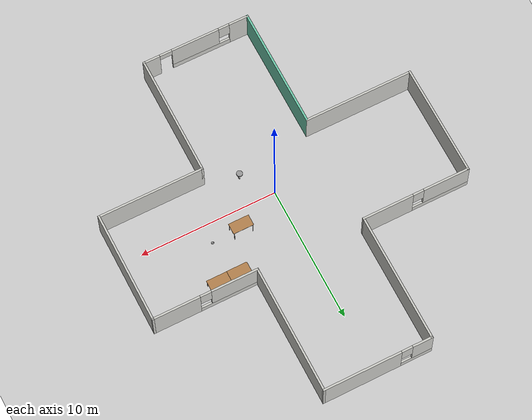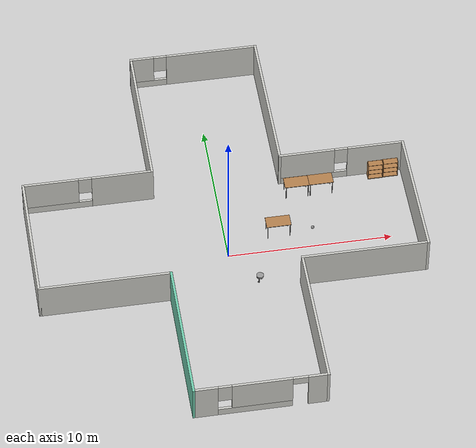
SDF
<sdf version="1.6">
 <world name="default">
  <model name="ground_plane">
   <static>1</static>
   <link name="link">
    <collision name="collision">
     <geometry><plane><normal>0 0 1</normal><size>100 100</size></plane></geometry>
     <surface>
      <contact><collide_bitmask>65535</collide_bitmask></contact>
      <friction><ode><mu>100</mu><mu2>50</mu2></ode></friction>
     </surface>
    </collision>
    <visual name="visual">
     <cast_shadows>0</cast_shadows>
     <geometry><plane><normal>0 0 1</normal><size>100 100</size></plane></geometry>
     <material>
      <script><uri>file://media/materials/scripts/gazebo.material</uri><name>Gazebo/Grey</name></script>
     </material>
    </visual>
   </link>
  </model>
  <model name="model">
   <pose>-0.05674 1.50944 0 0 -0 0</pose>
   <link name="Wall_34">
    <collision name="Wall_34_Collision">
     <geometry><box><size>9.5 0.15 2.5</size></box></geometry>
     <pose>0 0 1.25 0 -0 0</pose>
    </collision>
    <visual name="Wall_34_Visual">
     <pose>0 0 1.25 0 -0 0</pose>
     <geometry><box><size>9.5 0.15 2.5</size></box></geometry>
     <material>
      <script><uri>file://media/materials/scripts/gazebo.material</uri><name>Gazebo/CeilingTiled</name></script>
      <ambient>0.435294 0.796078 0.67451 1</ambient>
     </material>
     <meta><layer>0</layer></meta>
    </visual>
    <pose>-3.8 8.475 0 0 0 -1.5708</pose>
   </link>
   <link name="Wall_35">
    <pose>-7.725 3.8 0 0 -0 3.14159</pose>
    <visual name="Wall_35_Visual_0">
     <pose>-2.11265 0 1.25 0 -0 0</pose>
     <geometry><box><size>3.77469 0.15 2.5</size></box></geometry>
     <material>
      <script><uri>file://media/materials/scripts/gazebo.material</uri><name>Gazebo/CeilingTiled</name></script>
      <ambient>0.435294 0.796078 0.67451 1</ambient>
     </material>
     <meta><layer>0</layer></meta>
    </visual>
    <collision name="Wall_35_Collision_0">
     <geometry><box><size>3.77469 0.15 2.5</size></box></geometry>
     <pose>-2.11265 0 1.25 0 -0 0</pose>
    </collision>
    <visual name="Wall_35_Visual_1">
     <pose>1.88735 0 0.25 0 -0 0</pose>
     <geometry><box><size>4.22531 0.15 0.5</size></box></geometry>
     <material>
      <script><uri>file://media/materials/scripts/gazebo.material</uri><name>Gazebo/CeilingTiled</name></script>
      <ambient>0.435294 0.796078 0.67451 1</ambient>
     </material>
     <meta><layer>0</layer></meta>
    </visual>
    <collision name="Wall_35_Collision_1">
     <geometry><box><size>4.22531 0.15 0.5</size></box></geometry>
     <pose>1.88735 0 0.25 0 -0 0</pose>
    </collision>
    <visual name="Wall_35_Visual_2">
     <pose>2.28735 0 1.5 0 -0 0</pose>
     <geometry><box><size>3.42531 0.15 2</size></box></geometry>
     <material>
      <script><uri>file://media/materials/scripts/gazebo.material</uri><name>Gazebo/CeilingTiled</name></script>
      <ambient>0.435294 0.796078 0.67451 1</ambient>
     </material>
     <meta><layer>0</layer></meta>
    </visual>
    <collision name="Wall_35_Collision_2">
     <geometry><box><size>3.42531 0.15 2</size></box></geometry>
     <pose>2.28735 0 1.5 0 -0 0</pose>
    </collision>
    <visual name="Wall_35_Visual_3">
     <pose>0.174692 0 1.9 0 -0 0</pose>
     <geometry><box><size>0.8 0.15 1.2</size></box></geometry>
     <material>
      <script><uri>file://media/materials/scripts/gazebo.material</uri><name>Gazebo/CeilingTiled</name></script>
      <ambient>0.435294 0.796078 0.67451 1</ambient>
     </material>
     <meta><layer>0</layer></meta>
    </visual>
    <collision name="Wall_35_Collision_3">
     <geometry><box><size>0.8 0.15 1.2</size></box></geometry>
     <pose>0.174692 0 1.9 0 -0 0</pose>
    </collision>
   </link>
   <link name="Wall_36">
    <collision name="Wall_36_Collision">
     <geometry><box><size>8.25 0.15 2.5</size></box></geometry>
     <pose>0 0 1.25 0 -0 0</pose>
    </collision>
    <visual name="Wall_36_Visual">
     <pose>0 0 1.25 0 -0 0</pose>
     <geometry><box><size>8.25 0.15 2.5</size></box></geometry>
     <material>
      <script><uri>file://media/materials/scripts/gazebo.material</uri><name>Gazebo/CeilingTiled</name></script>
      <ambient>0.435294 0.796078 0.67451 1</ambient>
     </material>
     <meta><layer>0</layer></meta>
    </visual>
    <pose>-11.65 -0.25 0 0 0 -1.5708</pose>
   </link>
   <link name="Wall_37">
    <collision name="Wall_37_Collision">
     <geometry><box><size>8 0.15 2.5</size></box></geometry>
     <pose>0 0 1.25 0 -0 0</pose>
    </collision>
    <visual name="Wall_37_Visual">
     <pose>0 0 1.25 0 -0 0</pose>
     <geometry><box><size>8 0.15 2.5</size></box></geometry>
     <material>
      <script><uri>file://media/materials/scripts/gazebo.material</uri><name>Gazebo/CeilingTiled</name></script>
      <ambient>0.435294 0.796078 0.67451 1</ambient>
     </material>
     <meta><layer>0</layer></meta>
    </visual>
    <pose>-7.725 -4.3 0 0 -0 0</pose>
   </link>
   <link name="Wall_38">
    <collision name="Wall_38_Collision">
     <geometry><box><size>9 0.15 2.5</size></box></geometry>
     <pose>0 0 1.25 0 -0 0</pose>
    </collision>
    <visual name="Wall_38_Visual">
     <pose>0 0 1.25 0 -0 0</pose>
     <geometry><box><size>9 0.15 2.5</size></box></geometry>
     <material>
      <script><uri>file://media/materials/scripts/gazebo.material</uri><name>Gazebo/Grey</name></script>
      <ambient>0.435294 0.796078 0.67451 1</ambient>
     </material>
     <meta><layer>0</layer></meta>
    </visual>
    <pose>-3.8 -8.725 0 0 0 -1.5708</pose>
   </link>
   <link name="Wall_39">
    <pose>0.125 -13.15 0 0 -0 0</pose>
    <visual name="Wall_39_Visual_0">
     <pose>-3.25429 0 1.25 0 -0 0</pose>
     <geometry><box><size>1.49142 0.15 2.5</size></box></geometry>
     <material>
      <script><uri>file://media/materials/scripts/gazebo.material</uri><name>Gazebo/CeilingTiled</name></script>
      <ambient>0.435294 0.796078 0.67451 1</ambient>
     </material>
     <meta><layer>0</layer></meta>
    </visual>
    <collision name="Wall_39_Collision_0">
     <geometry><box><size>1.49142 0.15 2.5</size></box></geometry>
     <pose>-3.25429 0 1.25 0 -0 0</pose>
    </collision>
    <visual name="Wall_39_Visual_1">
     <pose>3.3734 0 1.25 0 -0 0</pose>
     <geometry><box><size>1.25321 0.15 2.5</size></box></geometry>
     <material>
      <script><uri>file://media/materials/scripts/gazebo.material</uri><name>Gazebo/CeilingTiled</name></script>
      <ambient>0.435294 0.796078 0.67451 1</ambient>
     </material>
     <meta><layer>0</layer></meta>
    </visual>
    <collision name="Wall_39_Collision_1">
     <geometry><box><size>1.25321 0.15 2.5</size></box></geometry>
     <pose>3.3734 0 1.25 0 -0 0</pose>
    </collision>
    <visual name="Wall_39_Visual_2">
     <pose>-0.330892 0 0.25 0 -0 0</pose>
     <geometry><box><size>4.35537 0.15 0.5</size></box></geometry>
     <material>
      <script><uri>file://media/materials/scripts/gazebo.material</uri><name>Gazebo/CeilingTiled</name></script>
      <ambient>0.435294 0.796078 0.67451 1</ambient>
     </material>
     <meta><layer>0</layer></meta>
    </visual>
    <collision name="Wall_39_Collision_2">
     <geometry><box><size>4.35537 0.15 0.5</size></box></geometry>
     <pose>-0.330892 0 0.25 0 -0 0</pose>
    </collision>
    <visual name="Wall_39_Visual_3">
     <pose>0.069108 0 1.5 0 -0 0</pose>
     <geometry><box><size>3.55537 0.15 2</size></box></geometry>
     <material>
      <script><uri>file://media/materials/scripts/gazebo.material</uri><name>Gazebo/CeilingTiled</name></script>
      <ambient>0.435294 0.796078 0.67451 1</ambient>
     </material>
     <meta><layer>0</layer></meta>
    </visual>
    <collision name="Wall_39_Collision_3">
     <geometry><box><size>3.55537 0.15 2</size></box></geometry>
     <pose>0.069108 0 1.5 0 -0 0</pose>
    </collision>
    <visual name="Wall_39_Visual_4">
     <pose>-2.10858 0 1.9 0 -0 0</pose>
     <geometry><box><size>0.8 0.15 1.2</size></box></geometry>
     <material>
      <script><uri>file://media/materials/scripts/gazebo.material</uri><name>Gazebo/CeilingTiled</name></script>
      <ambient>0.435294 0.796078 0.67451 1</ambient>
     </material>
     <meta><layer>0</layer></meta>
    </visual>
    <collision name="Wall_39_Collision_4">
     <geometry><box><size>0.8 0.15 1.2</size></box></geometry>
     <pose>-2.10858 0 1.9 0 -0 0</pose>
    </collision>
    <visual name="Wall_39_Visual_5">
     <pose>2.29679 0 2.25 0 -0 0</pose>
     <geometry><box><size>0.9 0.15 0.5</size></box></geometry>
     <material>
      <script><uri>file://media/materials/scripts/gazebo.material</uri><name>Gazebo/CeilingTiled</name></script>
      <ambient>0.435294 0.796078 0.67451 1</ambient>
     </material>
     <meta><layer>0</layer></meta>
    </visual>
    <collision name="Wall_39_Collision_5">
     <geometry><box><size>0.9 0.15 0.5</size></box></geometry>
     <pose>2.29679 0 2.25 0 -0 0</pose>
    </collision>
   </link>
   <link name="Wall_40">
    <collision name="Wall_40_Collision">
     <geometry><box><size>9 0.15 2.5</size></box></geometry>
     <pose>0 0 1.25 0 -0 0</pose>
    </collision>
    <visual name="Wall_40_Visual">
     <pose>0 0 1.25 0 -0 0</pose>
     <geometry><box><size>9 0.15 2.5</size></box></geometry>
     <material>
      <script><uri>file://media/materials/scripts/gazebo.material</uri><name>Gazebo/CeilingTiled</name></script>
      <ambient>0.435294 0.796078 0.67451 1</ambient>
     </material>
     <meta><layer>0</layer></meta>
    </visual>
    <pose>4.05 -8.725 0 0 -0 1.5708</pose>
   </link>
   <link name="Wall_41">
    <collision name="Wall_41_Collision">
     <geometry><box><size>7.75 0.15 2.5</size></box></geometry>
     <pose>0 0 1.25 0 -0 0</pose>
    </collision>
    <visual name="Wall_41_Visual">
     <pose>0 0 1.25 0 -0 0</pose>
     <geometry><box><size>7.75 0.15 2.5</size></box></geometry>
     <material>
      <script><uri>file://media/materials/scripts/gazebo.material</uri><name>Gazebo/CeilingTiled</name></script>
      <ambient>0.435294 0.796078 0.67451 1</ambient>
     </material>
     <meta><layer>0</layer></meta>
    </visual>
    <pose>7.85 -4.3 0 0 -0 0</pose>
   </link>
   <link name="Wall_42">
    <collision name="Wall_42_Collision">
     <geometry><box><size>8.25 0.15 2.5</size></box></geometry>
     <pose>0 0 1.25 0 -0 0</pose>
    </collision>
    <visual name="Wall_42_Visual">
     <pose>0 0 1.25 0 -0 0</pose>
     <geometry><box><size>8.25 0.15 2.5</size></box></geometry>
     <material>
      <script><uri>file://media/materials/scripts/gazebo.material</uri><name>Gazebo/CeilingTiled</name></script>
      <ambient>0.435294 0.796078 0.67451 1</ambient>
     </material>
     <meta><layer>0</layer></meta>
    </visual>
    <pose>11.65 -0.25 0 0 -0 1.5708</pose>
   </link>
   <link name="Wall_43">
    <pose>7.85 3.8 0 0 -0 3.14159</pose>
    <visual name="Wall_43_Visual_0">
     <pose>-2.12983 0 1.25 0 -0 0</pose>
     <geometry><box><size>3.49035 0.15 2.5</size></box></geometry>
     <material>
      <script><uri>file://media/materials/scripts/gazebo.material</uri><name>Gazebo/CeilingTiled</name></script>
      <ambient>0.435294 0.796078 0.67451 1</ambient>
     </material>
     <meta><layer>0</layer></meta>
    </visual>
    <collision name="Wall_43_Collision_0">
     <geometry><box><size>3.49035 0.15 2.5</size></box></geometry>
     <pose>-2.12983 0 1.25 0 -0 0</pose>
    </collision>
    <visual name="Wall_43_Visual_1">
     <pose>1.74517 0 0.25 0 -0 0</pose>
     <geometry><box><size>4.25966 0.15 0.5</size></box></geometry>
     <material>
      <script><uri>file://media/materials/scripts/gazebo.material</uri><name>Gazebo/CeilingTiled</name></script>
      <ambient>0.435294 0.796078 0.67451 1</ambient>
     </material>
     <meta><layer>0</layer></meta>
    </visual>
    <collision name="Wall_43_Collision_1">
     <geometry><box><size>4.25966 0.15 0.5</size></box></geometry>
     <pose>1.74517 0 0.25 0 -0 0</pose>
    </collision>
    <visual name="Wall_43_Visual_2">
     <pose>2.14517 0 1.5 0 -0 0</pose>
     <geometry><box><size>3.45966 0.15 2</size></box></geometry>
     <material>
      <script><uri>file://media/materials/scripts/gazebo.material</uri><name>Gazebo/CeilingTiled</name></script>
      <ambient>0.435294 0.796078 0.67451 1</ambient>
     </material>
     <meta><layer>0</layer></meta>
    </visual>
    <collision name="Wall_43_Collision_2">
     <geometry><box><size>3.45966 0.15 2</size></box></geometry>
     <pose>2.14517 0 1.5 0 -0 0</pose>
    </collision>
    <visual name="Wall_43_Visual_3">
     <pose>0.015345 0 1.9 0 -0 0</pose>
     <geometry><box><size>0.8 0.15 1.2</size></box></geometry>
     <material>
      <script><uri>file://media/materials/scripts/gazebo.material</uri><name>Gazebo/CeilingTiled</name></script>
      <ambient>0.435294 0.796078 0.67451 1</ambient>
     </material>
     <meta><layer>0</layer></meta>
    </visual>
    <collision name="Wall_43_Collision_3">
     <geometry><box><size>0.8 0.15 1.2</size></box></geometry>
     <pose>0.015345 0 1.9 0 -0 0</pose>
    </collision>
   </link>
   <link name="Wall_44">
    <collision name="Wall_44_Collision">
     <geometry><box><size>9.5 0.15 2.5</size></box></geometry>
     <pose>0 0 1.25 0 -0 0</pose>
    </collision>
    <visual name="Wall_44_Visual">
     <pose>0 0 1.25 0 -0 0</pose>
     <geometry><box><size>9.5 0.15 2.5</size></box></geometry>
     <material>
      <script><uri>file://media/materials/scripts/gazebo.material</uri><name>Gazebo/CeilingTiled</name></script>
      <ambient>0.435294 0.796078 0.67451 1</ambient>
     </material>
     <meta><layer>0</layer></meta>
    </visual>
    <pose>4.05 8.475 0 0 -0 1.5708</pose>
   </link>
   <link name="Wall_45">
    <pose>0.125 13.15 0 0 -0 3.14159</pose>
    <visual name="Wall_45_Visual_0">
     <pose>-1.14571 0 1.25 0 -0 0</pose>
     <geometry><box><size>5.70858 0.15 2.5</size></box></geometry>
     <material>
      <script><uri>file://media/materials/scripts/gazebo.material</uri><name>Gazebo/CeilingTiled</name></script>
      <ambient>0.435294 0.796078 0.67451 1</ambient>
     </material>
     <meta><layer>0</layer></meta>
    </visual>
    <collision name="Wall_45_Collision_0">
     <geometry><box><size>5.70858 0.15 2.5</size></box></geometry>
     <pose>-1.14571 0 1.25 0 -0 0</pose>
    </collision>
    <visual name="Wall_45_Visual_1">
     <pose>2.85429 0 0.25 0 -0 0</pose>
     <geometry><box><size>2.29142 0.15 0.5</size></box></geometry>
     <material>
      <script><uri>file://media/materials/scripts/gazebo.material</uri><name>Gazebo/CeilingTiled</name></script>
      <ambient>0.435294 0.796078 0.67451 1</ambient>
     </material>
     <meta><layer>0</layer></meta>
    </visual>
    <collision name="Wall_45_Collision_1">
     <geometry><box><size>2.29142 0.15 0.5</size></box></geometry>
     <pose>2.85429 0 0.25 0 -0 0</pose>
    </collision>
    <visual name="Wall_45_Visual_2">
     <pose>3.25429 0 1.5 0 -0 0</pose>
     <geometry><box><size>1.49142 0.15 2</size></box></geometry>
     <material>
      <script><uri>file://media/materials/scripts/gazebo.material</uri><name>Gazebo/CeilingTiled</name></script>
      <ambient>0.435294 0.796078 0.67451 1</ambient>
     </material>
     <meta><layer>0</layer></meta>
    </visual>
    <collision name="Wall_45_Collision_2">
     <geometry><box><size>1.49142 0.15 2</size></box></geometry>
     <pose>3.25429 0 1.5 0 -0 0</pose>
    </collision>
    <visual name="Wall_45_Visual_3">
     <pose>2.10858 0 1.9 0 -0 0</pose>
     <geometry><box><size>0.8 0.15 1.2</size></box></geometry>
     <material>
      <script><uri>file://media/materials/scripts/gazebo.material</uri><name>Gazebo/CeilingTiled</name></script>
      <ambient>0.435294 0.796078 0.67451 1</ambient>
     </material>
     <meta><layer>0</layer></meta>
    </visual>
    <collision name="Wall_45_Collision_3">
     <geometry><box><size>0.8 0.15 1.2</size></box></geometry>
     <pose>2.10858 0 1.9 0 -0 0</pose>
    </collision>
   </link>
   <static>1</static>
  </model>
  <model name="table_1">
   <static>1</static>
   <link name="link">
    <collision name="surface">
     <pose>0 0 1 0 -0 0</pose>
     <geometry><box><size>1.5 0.8 0.03</size></box></geometry>
     <surface><friction><ode><mu>0.6</mu><mu2>0.6</mu2></ode></friction></surface>
    </collision>
    <visual name="visual1">
     <pose>0 0 1 0 -0 0</pose>
     <geometry><box><size>1.5 0.8 0.03</size></box></geometry>
     <material>
      <script><uri>file://media/materials/scripts/gazebo.material</uri><name>Gazebo/Wood</name></script>
     </material>
    </visual>
    <collision name="front_left_leg">
     <pose>0.68 0.38 0.5 0 -0 0</pose>
     <geometry><cylinder><radius>0.02</radius><length>1</length></cylinder></geometry>
    </collision>
    <visual name="front_left_leg">
     <pose>0.68 0.38 0.5 0 -0 0</pose>
     <geometry><cylinder><radius>0.02</radius><length>1</length></cylinder></geometry>
     <material>
      <script><uri>file://media/materials/scripts/gazebo.material</uri><name>Gazebo/Grey</name></script>
     </material>
    </visual>
    <collision name="front_right_leg">
     <pose>0.68 -0.38 0.5 0 -0 0</pose>
     <geometry><cylinder><radius>0.02</radius><length>1</length></cylinder></geometry>
    </collision>
    <visual name="front_right_leg">
     <pose>0.68 -0.38 0.5 0 -0 0</pose>
     <geometry><cylinder><radius>0.02</radius><length>1</length></cylinder></geometry>
     <material>
      <script><uri>file://media/materials/scripts/gazebo.material</uri><name>Gazebo/Grey</name></script>
     </material>
    </visual>
    <collision name="back_right_leg">
     <pose>-0.68 -0.38 0.5 0 -0 0</pose>
     <geometry><cylinder><radius>0.02</radius><length>1</length></cylinder></geometry>
    </collision>
    <visual name="back_right_leg">
     <pose>-0.68 -0.38 0.5 0 -0 0</pose>
     <geometry><cylinder><radius>0.02</radius><length>1</length></cylinder></geometry>
     <material>
      <script><uri>file://media/materials/scripts/gazebo.material</uri><name>Gazebo/Grey</name></script>
     </material>
    </visual>
    <collision name="back_left_leg">
     <pose>-0.68 0.38 0.5 0 -0 0</pose>
     <geometry><cylinder><radius>0.02</radius><length>1</length></cylinder></geometry>
    </collision>
    <visual name="back_left_leg">
     <pose>-0.68 0.38 0.5 0 -0 0</pose>
     <geometry><cylinder><radius>0.02</radius><length>1</length></cylinder></geometry>
     <material>
      <script><uri>file://media/materials/scripts/gazebo.material</uri><name>Gazebo/Grey</name></script>
     </material>
    </visual>
   </link>
   <pose>4.8801 4.37765 0 0 -0 0</pose>
  </model>
  <model name="table_2">
   <static>1</static>
   <link name="link">
    <collision name="surface">
     <pose>0 0 1 0 -0 0</pose>
     <geometry><box><size>1.5 0.8 0.03</size></box></geometry>
     <surface><friction><ode><mu>0.6</mu><mu2>0.6</mu2></ode></friction></surface>
    </collision>
    <visual name="visual1">
     <pose>0 0 1 0 -0 0</pose>
     <geometry><box><size>1.5 0.8 0.03</size></box></geometry>
     <material>
      <script><uri>file://media/materials/scripts/gazebo.material</uri><name>Gazebo/Wood</name></script>
     </material>
    </visual>
    <collision name="front_left_leg">
     <pose>0.68 0.38 0.5 0 -0 0</pose>
     <geometry><cylinder><radius>0.02</radius><length>1</length></cylinder></geometry>
    </collision>
    <visual name="front_left_leg">
     <pose>0.68 0.38 0.5 0 -0 0</pose>
     <geometry><cylinder><radius>0.02</radius><length>1</length></cylinder></geometry>
     <material>
      <script><uri>file://media/materials/scripts/gazebo.material</uri><name>Gazebo/Grey</name></script>
     </material>
    </visual>
    <collision name="front_right_leg">
     <pose>0.68 -0.38 0.5 0 -0 0</pose>
     <geometry><cylinder><radius>0.02</radius><length>1</length></cylinder></geometry>
    </collision>
    <visual name="front_right_leg">
     <pose>0.68 -0.38 0.5 0 -0 0</pose>
     <geometry><cylinder><radius>0.02</radius><length>1</length></cylinder></geometry>
     <material>
      <script><uri>file://media/materials/scripts/gazebo.material</uri><name>Gazebo/Grey</name></script>
     </material>
    </visual>
    <collision name="back_right_leg">
     <pose>-0.68 -0.38 0.5 0 -0 0</pose>
     <geometry><cylinder><radius>0.02</radius><length>1</length></cylinder></geometry>
    </collision>
    <visual name="back_right_leg">
     <pose>-0.68 -0.38 0.5 0 -0 0</pose>
     <geometry><cylinder><radius>0.02</radius><length>1</length></cylinder></geometry>
     <material>
      <script><uri>file://media/materials/scripts/gazebo.material</uri><name>Gazebo/Grey</name></script>
     </material>
    </visual>
    <collision name="back_left_leg">
     <pose>-0.68 0.38 0.5 0 -0 0</pose>
     <geometry><cylinder><radius>0.02</radius><length>1</length></cylinder></geometry>
    </collision>
    <visual name="back_left_leg">
     <pose>-0.68 0.38 0.5 0 -0 0</pose>
     <geometry><cylinder><radius>0.02</radius><length>1</length></cylinder></geometry>
     <material>
      <script><uri>file://media/materials/scripts/gazebo.material</uri><name>Gazebo/Grey</name></script>
     </material>
    </visual>
   </link>
   <pose>6.3729 4.38661 0 0 -0 0</pose>
  </model>
  <model name="HumanoidRobot_0">
   <link name="link_0">
    <pose>-0 0.009 0.276 0 -0 0</pose>
    <inertial>
     <mass>1</mass>
     <inertia><ixx>0.145833</ixx><ixy>0</ixy><ixz>0</ixz><iyy>0.145833</iyy><iyz>0</iyz><izz>0.125</izz></inertia>
    </inertial>
    <visual name="visual">
     <geometry><cylinder><radius>0.22</radius><length>0.1</length></cylinder></geometry>
     <material>
      <lighting>1</lighting>
      <script><uri>file://media/materials/scripts/gazebo.material</uri><name>Gazebo/Grey</name></script>
      <shader type="pixel"><normal_map>__default__</normal_map></shader>
      <ambient>0.3 0.3 0.3 1</ambient>
      <diffuse>0.7 0.7 0.7 1</diffuse>
      <specular>0.01 0.01 0.01 1</specular>
      <emissive>0 0 0 1</emissive>
     </material>
    </visual>
    <collision name="collision">
     <geometry><cylinder><radius>0.22</radius><length>0.1</length></cylinder></geometry>
     <surface>
      <friction>
       <ode><mu>1</mu><mu2>1</mu2><fdir1>0 0 0</fdir1><slip1>0</slip1><slip2>0</slip2></ode>
       <torsional>
        <coefficient>1</coefficient>
        <patch_radius>0</patch_radius>
        <surface_radius>0</surface_radius>
        <use_patch_radius>1</use_patch_radius>
        <ode><slip>0</slip></ode>
       </torsional>
      </friction>
      <bounce><restitution_coefficient>0</restitution_coefficient><threshold>1e+06</threshold></bounce>
      <contact>
       <collide_without_contact>0</collide_without_contact>
       <collide_without_contact_bitmask>1</collide_without_contact_bitmask>
       <collide_bitmask>1</collide_bitmask>
       <ode>
        <soft_cfm>0</soft_cfm>
        <soft_erp>0.2</soft_erp>
        <kp>1e+13</kp>
        <kd>1</kd>
        <max_vel>0.01</max_vel>
        <min_depth>0</min_depth>
       </ode>
       <bullet>
        <split_impulse>1</split_impulse>
        <split_impulse_penetration_threshold>-0.01</split_impulse_penetration_threshold>
        <soft_cfm>0</soft_cfm>
        <soft_erp>0.2</soft_erp>
        <kp>1e+13</kp>
        <kd>1</kd>
       </bullet>
      </contact>
     </surface>
    </collision>
   </link>
   <link name="link_1">
    <pose>-0.155 -0.0485 0.026 0 -0 0</pose>
    <inertial>
     <mass>1</mass>
     <inertia>
      <ixx>0.166667</ixx>
      <ixy>0</ixy>
      <ixz>0</ixz>
      <iyy>0.166667</iyy>
      <iyz>0</iyz>
      <izz>0.166667</izz>
     </inertia>
    </inertial>
    <visual name="visual">
     <geometry><box><size>0.05 0.05 0.4</size></box></geometry>
     <material>
      <lighting>1</lighting>
      <script><uri>file://media/materials/scripts/gazebo.material</uri><name>Gazebo/Grey</name></script>
      <shader type="pixel"><normal_map>__default__</normal_map></shader>
      <ambient>0.3 0.3 0.3 1</ambient>
      <diffuse>0.7 0.7 0.7 1</diffuse>
      <specular>0.01 0.01 0.01 1</specular>
      <emissive>0 0 0 1</emissive>
     </material>
    </visual>
    <collision name="collision">
     <geometry><box><size>0.05 0.05 0.4</size></box></geometry>
     <surface>
      <friction>
       <ode><mu>1</mu><mu2>1</mu2><fdir1>0 0 0</fdir1><slip1>0</slip1><slip2>0</slip2></ode>
       <torsional>
        <coefficient>1</coefficient>
        <patch_radius>0</patch_radius>
        <surface_radius>0</surface_radius>
        <use_patch_radius>1</use_patch_radius>
        <ode><slip>0</slip></ode>
       </torsional>
      </friction>
      <bounce><restitution_coefficient>0</restitution_coefficient><threshold>1e+06</threshold></bounce>
      <contact>
       <collide_without_contact>0</collide_without_contact>
       <collide_without_contact_bitmask>1</collide_without_contact_bitmask>
       <collide_bitmask>1</collide_bitmask>
       <ode>
        <soft_cfm>0</soft_cfm>
        <soft_erp>0.2</soft_erp>
        <kp>1e+13</kp>
        <kd>1</kd>
        <max_vel>0.01</max_vel>
        <min_depth>0</min_depth>
       </ode>
       <bullet>
        <split_impulse>1</split_impulse>
        <split_impulse_penetration_threshold>-0.01</split_impulse_penetration_threshold>
        <soft_cfm>0</soft_cfm>
        <soft_erp>0.2</soft_erp>
        <kp>1e+13</kp>
        <kd>1</kd>
       </bullet>
      </contact>
     </surface>
    </collision>
   </link>
   <link name="link_1_clone">
    <pose>0.155 0.009 0.026 0 -0 0</pose>
    <inertial>
     <mass>1</mass>
     <inertia>
      <ixx>0.166667</ixx>
      <ixy>0</ixy>
      <ixz>0</ixz>
      <iyy>0.166667</iyy>
      <iyz>0</iyz>
      <izz>0.166667</izz>
     </inertia>
    </inertial>
    <visual name="visual">
     <geometry><box><size>0.05 0.05 0.4</size></box></geometry>
     <material>
      <lighting>1</lighting>
      <script><uri>file://media/materials/scripts/gazebo.material</uri><name>Gazebo/Grey</name></script>
      <shader type="pixel"><normal_map>__default__</normal_map></shader>
      <ambient>0.3 0.3 0.3 1</ambient>
      <diffuse>0.7 0.7 0.7 1</diffuse>
      <specular>0.01 0.01 0.01 1</specular>
      <emissive>0 0 0 1</emissive>
     </material>
    </visual>
    <collision name="collision">
     <geometry><box><size>0.05 0.05 0.4</size></box></geometry>
     <surface>
      <friction>
       <ode><mu>1</mu><mu2>1</mu2><fdir1>0 0 0</fdir1><slip1>0</slip1><slip2>0</slip2></ode>
       <torsional>
        <coefficient>1</coefficient>
        <patch_radius>0</patch_radius>
        <surface_radius>0</surface_radius>
        <use_patch_radius>1</use_patch_radius>
        <ode><slip>0</slip></ode>
       </torsional>
      </friction>
      <bounce><restitution_coefficient>0</restitution_coefficient><threshold>1e+06</threshold></bounce>
      <contact>
       <collide_without_contact>0</collide_without_contact>
       <collide_without_contact_bitmask>1</collide_without_contact_bitmask>
       <collide_bitmask>1</collide_bitmask>
       <ode>
        <soft_cfm>0</soft_cfm>
        <soft_erp>0.2</soft_erp>
        <kp>1e+13</kp>
        <kd>1</kd>
        <max_vel>0.01</max_vel>
        <min_depth>0</min_depth>
       </ode>
       <bullet>
        <split_impulse>1</split_impulse>
        <split_impulse_penetration_threshold>-0.01</split_impulse_penetration_threshold>
        <soft_cfm>0</soft_cfm>
        <soft_erp>0.2</soft_erp>
        <kp>1e+13</kp>
        <kd>1</kd>
       </bullet>
      </contact>
     </surface>
    </collision>
   </link>
   <link name="link_2">
    <pose>-0.155 -0.0135 -0.164 0 -0 0</pose>
    <inertial>
     <mass>1</mass>
     <inertia>
      <ixx>0.166667</ixx>
      <ixy>0</ixy>
      <ixz>0</ixz>
      <iyy>0.166667</iyy>
      <iyz>0</iyz>
      <izz>0.166667</izz>
     </inertia>
    </inertial>
    <visual name="visual">
     <geometry><box><size>0.05 0.12 0.02</size></box></geometry>
     <material>
      <lighting>1</lighting>
      <script><uri>file://media/materials/scripts/gazebo.material</uri><name>Gazebo/Grey</name></script>
      <shader type="pixel"><normal_map>__default__</normal_map></shader>
      <ambient>0.3 0.3 0.3 1</ambient>
      <diffuse>0.7 0.7 0.7 1</diffuse>
      <specular>0.01 0.01 0.01 1</specular>
      <emissive>0 0 0 1</emissive>
     </material>
    </visual>
    <collision name="collision">
     <geometry><box><size>0.05 0.12 0.02</size></box></geometry>
     <surface>
      <friction>
       <ode><mu>1</mu><mu2>1</mu2><fdir1>0 0 0</fdir1><slip1>0</slip1><slip2>0</slip2></ode>
       <torsional>
        <coefficient>1</coefficient>
        <patch_radius>0</patch_radius>
        <surface_radius>0</surface_radius>
        <use_patch_radius>1</use_patch_radius>
        <ode><slip>0</slip></ode>
       </torsional>
      </friction>
      <bounce><restitution_coefficient>0</restitution_coefficient><threshold>1e+06</threshold></bounce>
      <contact>
       <collide_without_contact>0</collide_without_contact>
       <collide_without_contact_bitmask>1</collide_without_contact_bitmask>
       <collide_bitmask>1</collide_bitmask>
       <ode>
        <soft_cfm>0</soft_cfm>
        <soft_erp>0.2</soft_erp>
        <kp>1e+13</kp>
        <kd>1</kd>
        <max_vel>0.01</max_vel>
        <min_depth>0</min_depth>
       </ode>
       <bullet>
        <split_impulse>1</split_impulse>
        <split_impulse_penetration_threshold>-0.01</split_impulse_penetration_threshold>
        <soft_cfm>0</soft_cfm>
        <soft_erp>0.2</soft_erp>
        <kp>1e+13</kp>
        <kd>1</kd>
       </bullet>
      </contact>
     </surface>
    </collision>
   </link>
   <link name="link_2_clone">
    <pose>0.155 0.044 -0.164 0 -0 0</pose>
    <inertial>
     <mass>1</mass>
     <inertia>
      <ixx>0.166667</ixx>
      <ixy>0</ixy>
      <ixz>0</ixz>
      <iyy>0.166667</iyy>
      <iyz>0</iyz>
      <izz>0.166667</izz>
     </inertia>
    </inertial>
    <visual name="visual">
     <geometry><box><size>0.05 0.12 0.02</size></box></geometry>
     <material>
      <lighting>1</lighting>
      <script><uri>file://media/materials/scripts/gazebo.material</uri><name>Gazebo/Grey</name></script>
      <shader type="pixel"><normal_map>__default__</normal_map></shader>
      <ambient>0.3 0.3 0.3 1</ambient>
      <diffuse>0.7 0.7 0.7 1</diffuse>
      <specular>0.01 0.01 0.01 1</specular>
      <emissive>0 0 0 1</emissive>
     </material>
    </visual>
    <collision name="collision">
     <geometry><box><size>0.05 0.12 0.02</size></box></geometry>
     <surface>
      <friction>
       <ode><mu>1</mu><mu2>1</mu2><fdir1>0 0 0</fdir1><slip1>0</slip1><slip2>0</slip2></ode>
       <torsional>
        <coefficient>1</coefficient>
        <patch_radius>0</patch_radius>
        <surface_radius>0</surface_radius>
        <use_patch_radius>1</use_patch_radius>
        <ode><slip>0</slip></ode>
       </torsional>
      </friction>
      <bounce><restitution_coefficient>0</restitution_coefficient><threshold>1e+06</threshold></bounce>
      <contact>
       <collide_without_contact>0</collide_without_contact>
       <collide_without_contact_bitmask>1</collide_without_contact_bitmask>
       <collide_bitmask>1</collide_bitmask>
       <ode>
        <soft_cfm>0</soft_cfm>
        <soft_erp>0.2</soft_erp>
        <kp>1e+13</kp>
        <kd>1</kd>
        <max_vel>0.01</max_vel>
        <min_depth>0</min_depth>
       </ode>
       <bullet>
        <split_impulse>1</split_impulse>
        <split_impulse_penetration_threshold>-0.01</split_impulse_penetration_threshold>
        <soft_cfm>0</soft_cfm>
        <soft_erp>0.2</soft_erp>
        <kp>1e+13</kp>
        <kd>1</kd>
       </bullet>
      </contact>
     </surface>
    </collision>
   </link>
   <joint name="link_0_JOINT_2" type="revolute">
    <parent>link_0</parent>
    <child>link_1</child>
    <axis>
     <xyz>0 0 1</xyz>
     <use_parent_model_frame>0</use_parent_model_frame>
     <limit>
      <lower>-1.79769e+308</lower>
      <upper>1.79769e+308</upper>
      <effort>-1</effort>
      <velocity>-1</velocity>
     </limit>
     <dynamics>
      <spring_reference>0</spring_reference>
      <spring_stiffness>0</spring_stiffness>
      <damping>0</damping>
     </dynamics>
    </axis>
    <physics>
     <ode><limit><cfm>0</cfm><erp>0.2</erp></limit><suspension><cfm>0</cfm><erp>0.2</erp></suspension></ode>
    </physics>
   </joint>
   <joint name="link_0_JOINT_3" type="revolute">
    <parent>link_0</parent>
    <child>link_1_clone</child>
    <axis>
     <xyz>0 0 1</xyz>
     <use_parent_model_frame>0</use_parent_model_frame>
     <limit>
      <lower>-1.79769e+308</lower>
      <upper>1.79769e+308</upper>
      <effort>-1</effort>
      <velocity>-1</velocity>
     </limit>
     <dynamics>
      <spring_reference>0</spring_reference>
      <spring_stiffness>0</spring_stiffness>
      <damping>0</damping>
     </dynamics>
    </axis>
    <physics>
     <ode><limit><cfm>0</cfm><erp>0.2</erp></limit><suspension><cfm>0</cfm><erp>0.2</erp></suspension></ode>
    </physics>
   </joint>
   <joint name="link_1_JOINT_4" type="revolute">
    <parent>link_1</parent>
    <child>link_2</child>
    <axis>
     <xyz>0 0 1</xyz>
     <use_parent_model_frame>0</use_parent_model_frame>
     <limit>
      <lower>-1.79769e+308</lower>
      <upper>1.79769e+308</upper>
      <effort>-1</effort>
      <velocity>-1</velocity>
     </limit>
     <dynamics>
      <spring_reference>0</spring_reference>
      <spring_stiffness>0</spring_stiffness>
      <damping>0</damping>
     </dynamics>
    </axis>
    <physics>
     <ode><limit><cfm>0</cfm><erp>0.2</erp></limit><suspension><cfm>0</cfm><erp>0.2</erp></suspension></ode>
    </physics>
   </joint>
   <joint name="link_1_clone_JOINT_5" type="revolute">
    <parent>link_1_clone</parent>
    <child>link_2_clone</child>
    <axis>
     <xyz>0 0 1</xyz>
     <use_parent_model_frame>0</use_parent_model_frame>
     <limit>
      <lower>-1.79769e+308</lower>
      <upper>1.79769e+308</upper>
      <effort>-1</effort>
      <velocity>-1</velocity>
     </limit>
     <dynamics>
      <spring_reference>0</spring_reference>
      <spring_stiffness>0</spring_stiffness>
      <damping>0</damping>
     </dynamics>
    </axis>
    <physics>
     <ode><limit><cfm>0</cfm><erp>0.2</erp></limit><suspension><cfm>0</cfm><erp>0.2</erp></suspension></ode>
    </physics>
   </joint>
   <static>0</static>
   <pose>1.57909 -2.16412 0.174 0 -3e-06 0.772639</pose>
  </model>
  <model name="bookshelf">
   <static>1</static>
   <link name="link">
    <inertial><mass>1</mass></inertial>
    <collision name="back">
     <pose>0 0.005 0.6 0 -0 0</pose>
     <geometry><box><size>0.9 0.01 1.2</size></box></geometry>
    </collision>
    <visual name="visual1">
     <pose>0 0.005 0.6 0 -0 0</pose>
     <geometry><box><size>0.9 0.01 1.2</size></box></geometry>
     <material>
      <script><uri>file://media/materials/scripts/gazebo.material</uri><name>Gazebo/Wood</name></script>
     </material>
    </visual>
    <collision name="left_side">
     <pose>0.45 -0.195 0.6 0 -0 0</pose>
     <geometry><box><size>0.02 0.4 1.2</size></box></geometry>
    </collision>
    <visual name="visual2">
     <pose>0.45 -0.195 0.6 0 -0 0</pose>
     <geometry><box><size>0.02 0.4 1.2</size></box></geometry>
     <material>
      <script><uri>file://media/materials/scripts/gazebo.material</uri><name>Gazebo/Wood</name></script>
     </material>
    </visual>
    <collision name="right_side">
     <pose>-0.45 -0.195 0.6 0 -0 0</pose>
     <geometry><box><size>0.02 0.4 1.2</size></box></geometry>
    </collision>
    <visual name="visual3">
     <pose>-0.45 -0.195 0.6 0 -0 0</pose>
     <geometry><box><size>0.02 0.4 1.2</size></box></geometry>
     <material>
      <script><uri>file://media/materials/scripts/gazebo.material</uri><name>Gazebo/Wood</name></script>
     </material>
    </visual>
    <collision name="bottom">
     <pose>0 -0.195 0.03 0 -0 0</pose>
     <geometry><box><size>0.88 0.4 0.06</size></box></geometry>
    </collision>
    <visual name="visual4">
     <pose>0 -0.195 0.03 0 -0 0</pose>
     <geometry><box><size>0.88 0.4 0.06</size></box></geometry>
     <material>
      <script><uri>file://media/materials/scripts/gazebo.material</uri><name>Gazebo/Wood</name></script>
     </material>
    </visual>
    <collision name="top">
     <pose>0 -0.195 1.19 0 -0 0</pose>
     <geometry><box><size>0.88 0.4 0.02</size></box></geometry>
    </collision>
    <visual name="visual5">
     <pose>0 -0.195 1.19 0 -0 0</pose>
     <geometry><box><size>0.88 0.4 0.02</size></box></geometry>
     <material>
      <script><uri>file://media/materials/scripts/gazebo.material</uri><name>Gazebo/Wood</name></script>
     </material>
    </visual>
    <collision name="low_shelf">
     <pose>0 -0.195 0.43 0 -0 0</pose>
     <geometry><box><size>0.88 0.4 0.02</size></box></geometry>
    </collision>
    <visual name="visual6">
     <pose>0 -0.195 0.43 0 -0 0</pose>
     <geometry><box><size>0.88 0.4 0.02</size></box></geometry>
     <material>
      <script><uri>file://media/materials/scripts/gazebo.material</uri><name>Gazebo/Wood</name></script>
     </material>
    </visual>
    <collision name="high_shelf">
     <pose>0 -0.195 0.8 0 -0 0</pose>
     <geometry><box><size>0.88 0.4 0.02</size></box></geometry>
    </collision>
    <visual name="visual7">
     <pose>0 -0.195 0.8 0 -0 0</pose>
     <geometry><box><size>0.88 0.4 0.02</size></box></geometry>
     <material>
      <script><uri>file://media/materials/scripts/gazebo.material</uri><name>Gazebo/Wood</name></script>
     </material>
    </visual>
   </link>
   <pose>9.89649 5.15841 0 0 -0 0</pose>
  </model>
  <model name="bookshelf_0">
   <static>1</static>
   <link name="link">
    <inertial><mass>1</mass></inertial>
    <collision name="back">
     <pose>0 0.005 0.6 0 -0 0</pose>
     <geometry><box><size>0.9 0.01 1.2</size></box></geometry>
    </collision>
    <visual name="visual1">
     <pose>0 0.005 0.6 0 -0 0</pose>
     <geometry><box><size>0.9 0.01 1.2</size></box></geometry>
     <material>
      <script><uri>file://media/materials/scripts/gazebo.material</uri><name>Gazebo/Wood</name></script>
     </material>
    </visual>
    <collision name="left_side">
     <pose>0.45 -0.195 0.6 0 -0 0</pose>
     <geometry><box><size>0.02 0.4 1.2</size></box></geometry>
    </collision>
    <visual name="visual2">
     <pose>0.45 -0.195 0.6 0 -0 0</pose>
     <geometry><box><size>0.02 0.4 1.2</size></box></geometry>
     <material>
      <script><uri>file://media/materials/scripts/gazebo.material</uri><name>Gazebo/Wood</name></script>
     </material>
    </visual>
    <collision name="right_side">
     <pose>-0.45 -0.195 0.6 0 -0 0</pose>
     <geometry><box><size>0.02 0.4 1.2</size></box></geometry>
    </collision>
    <visual name="visual3">
     <pose>-0.45 -0.195 0.6 0 -0 0</pose>
     <geometry><box><size>0.02 0.4 1.2</size></box></geometry>
     <material>
      <script><uri>file://media/materials/scripts/gazebo.material</uri><name>Gazebo/Wood</name></script>
     </material>
    </visual>
    <collision name="bottom">
     <pose>0 -0.195 0.03 0 -0 0</pose>
     <geometry><box><size>0.88 0.4 0.06</size></box></geometry>
    </collision>
    <visual name="visual4">
     <pose>0 -0.195 0.03 0 -0 0</pose>
     <geometry><box><size>0.88 0.4 0.06</size></box></geometry>
     <material>
      <script><uri>file://media/materials/scripts/gazebo.material</uri><name>Gazebo/Wood</name></script>
     </material>
    </visual>
    <collision name="top">
     <pose>0 -0.195 1.19 0 -0 0</pose>
     <geometry><box><size>0.88 0.4 0.02</size></box></geometry>
    </collision>
    <visual name="visual5">
     <pose>0 -0.195 1.19 0 -0 0</pose>
     <geometry><box><size>0.88 0.4 0.02</size></box></geometry>
     <material>
      <script><uri>file://media/materials/scripts/gazebo.material</uri><name>Gazebo/Wood</name></script>
     </material>
    </visual>
    <collision name="low_shelf">
     <pose>0 -0.195 0.43 0 -0 0</pose>
     <geometry><box><size>0.88 0.4 0.02</size></box></geometry>
    </collision>
    <visual name="visual6">
     <pose>0 -0.195 0.43 0 -0 0</pose>
     <geometry><box><size>0.88 0.4 0.02</size></box></geometry>
     <material>
      <script><uri>file://media/materials/scripts/gazebo.material</uri><name>Gazebo/Wood</name></script>
     </material>
    </visual>
    <collision name="high_shelf">
     <pose>0 -0.195 0.8 0 -0 0</pose>
     <geometry><box><size>0.88 0.4 0.02</size></box></geometry>
    </collision>
    <visual name="visual7">
     <pose>0 -0.195 0.8 0 -0 0</pose>
     <geometry><box><size>0.88 0.4 0.02</size></box></geometry>
     <material>
      <script><uri>file://media/materials/scripts/gazebo.material</uri><name>Gazebo/Wood</name></script>
     </material>
    </visual>
   </link>
   <pose>10.8324 5.18126 0 0 -0 0</pose>
  </model>
  <model name="table_3">
   <static>1</static>
   <link name="link">
    <collision name="surface">
     <pose>0 0 1 0 -0 0</pose>
     <geometry><box><size>1.5 0.8 0.03</size></box></geometry>
     <surface><friction><ode><mu>0.6</mu><mu2>0.6</mu2></ode></friction></surface>
    </collision>
    <visual name="visual1">
     <pose>0 0 1 0 -0 0</pose>
     <geometry><box><size>1.5 0.8 0.03</size></box></geometry>
     <material>
      <script><uri>file://media/materials/scripts/gazebo.material</uri><name>Gazebo/Wood</name></script>
     </material>
    </visual>
    <collision name="front_left_leg">
     <pose>0.68 0.38 0.5 0 -0 0</pose>
     <geometry><cylinder><radius>0.02</radius><length>1</length></cylinder></geometry>
    </collision>
    <visual name="front_left_leg">
     <pose>0.68 0.38 0.5 0 -0 0</pose>
     <geometry><cylinder><radius>0.02</radius><length>1</length></cylinder></geometry>
     <material>
      <script><uri>file://media/materials/scripts/gazebo.material</uri><name>Gazebo/Grey</name></script>
     </material>
    </visual>
    <collision name="front_right_leg">
     <pose>0.68 -0.38 0.5 0 -0 0</pose>
     <geometry><cylinder><radius>0.02</radius><length>1</length></cylinder></geometry>
    </collision>
    <visual name="front_right_leg">
     <pose>0.68 -0.38 0.5 0 -0 0</pose>
     <geometry><cylinder><radius>0.02</radius><length>1</length></cylinder></geometry>
     <material>
      <script><uri>file://media/materials/scripts/gazebo.material</uri><name>Gazebo/Grey</name></script>
     </material>
    </visual>
    <collision name="back_right_leg">
     <pose>-0.68 -0.38 0.5 0 -0 0</pose>
     <geometry><cylinder><radius>0.02</radius><length>1</length></cylinder></geometry>
    </collision>
    <visual name="back_right_leg">
     <pose>-0.68 -0.38 0.5 0 -0 0</pose>
     <geometry><cylinder><radius>0.02</radius><length>1</length></cylinder></geometry>
     <material>
      <script><uri>file://media/materials/scripts/gazebo.material</uri><name>Gazebo/Grey</name></script>
     </material>
    </visual>
    <collision name="back_left_leg">
     <pose>-0.68 0.38 0.5 0 -0 0</pose>
     <geometry><cylinder><radius>0.02</radius><length>1</length></cylinder></geometry>
    </collision>
    <visual name="back_left_leg">
     <pose>-0.68 0.38 0.5 0 -0 0</pose>
     <geometry><cylinder><radius>0.02</radius><length>1</length></cylinder></geometry>
     <material>
      <script><uri>file://media/materials/scripts/gazebo.material</uri><name>Gazebo/Grey</name></script>
     </material>
    </visual>
   </link>
   <pose>3.25778 1.41593 0 0 -0 0</pose>
  </model>
  <model name="my_ball">
   <link name="link_0">
    <inertial>
     <mass>1</mass>
     <inertia><ixx>0.1</ixx><ixy>0</ixy><ixz>0</ixz><iyy>0.1</iyy><iyz>0</iyz><izz>0.1</izz></inertia>
    </inertial>
    <visual name="visual">
     <geometry><sphere><radius>0.1</radius></sphere></geometry>
     <material>
      <lighting>1</lighting>
      <script><uri>file://media/materials/scripts/gazebo.material</uri><name>Gazebo/Grey</name></script>
      <shader type="pixel"><normal_map>__default__</normal_map></shader>
      <ambient>1 1 1 1</ambient>
      <diffuse>1 1 1 1</diffuse>
      <specular>1 1 1 1</specular>
      <emissive>1 1 1 1</emissive>
     </material>
    </visual>
    <collision name="collision">
     <geometry><sphere><radius>0.1</radius></sphere></geometry>
     <surface>
      <friction>
       <ode><mu>1</mu><mu2>1</mu2><fdir1>0 0 0</fdir1><slip1>0</slip1><slip2>0</slip2></ode>
       <torsional>
        <coefficient>1</coefficient>
        <patch_radius>0</patch_radius>
        <surface_radius>0</surface_radius>
        <use_patch_radius>1</use_patch_radius>
        <ode><slip>0</slip></ode>
       </torsional>
      </friction>
      <bounce><restitution_coefficient>0</restitution_coefficient><threshold>1e+06</threshold></bounce>
      <contact>
       <collide_without_contact>0</collide_without_contact>
       <collide_without_contact_bitmask>1</collide_without_contact_bitmask>
       <collide_bitmask>1</collide_bitmask>
       <ode>
        <soft_cfm>0</soft_cfm>
        <soft_erp>0.2</soft_erp>
        <kp>1e+13</kp>
        <kd>1</kd>
        <max_vel>0.01</max_vel>
        <min_depth>0</min_depth>
       </ode>
       <bullet>
        <split_impulse>1</split_impulse>
        <split_impulse_penetration_threshold>-0.01</split_impulse_penetration_threshold>
        <soft_cfm>0</soft_cfm>
        <soft_erp>0.2</soft_erp>
        <kp>1e+13</kp>
        <kd>1</kd>
       </bullet>
      </contact>
     </surface>
    </collision>
   </link>
   <static>0</static>
   <pose>5.38803 1.38591 0.1 0 -0 0</pose>
  </model>
 </world>
</sdf>
